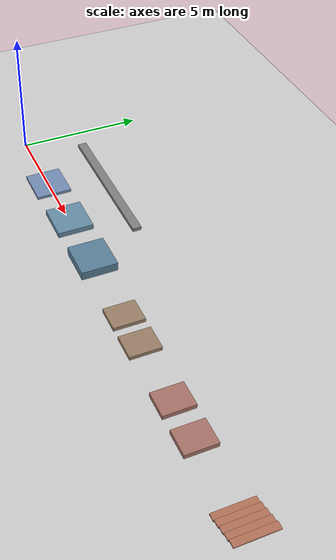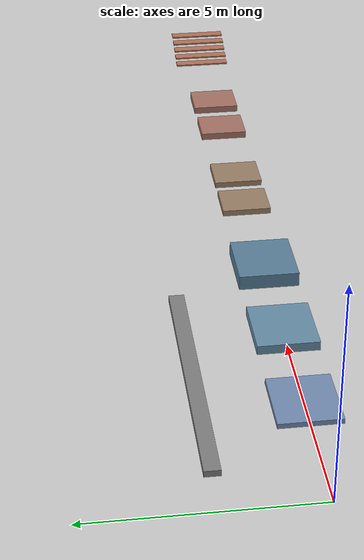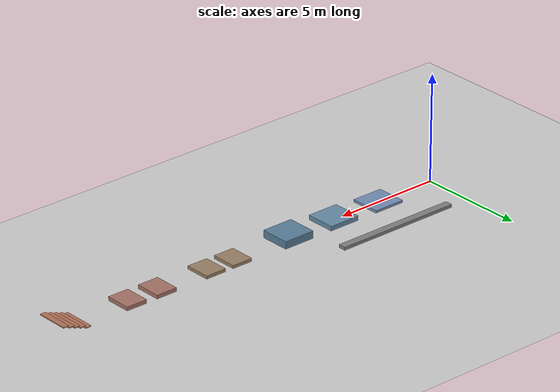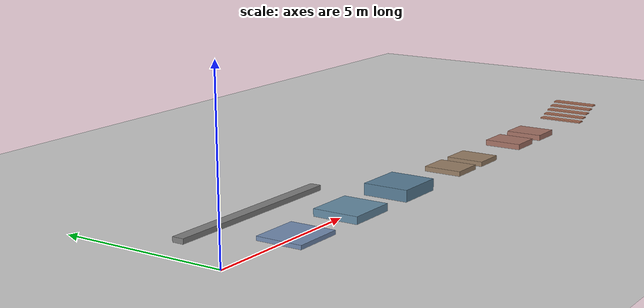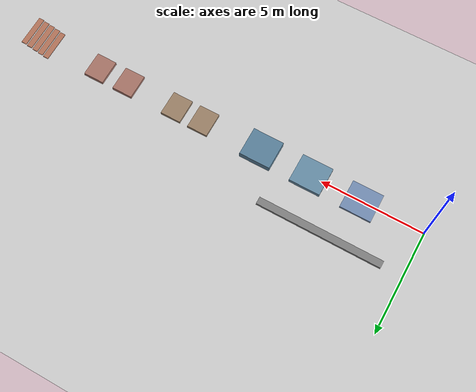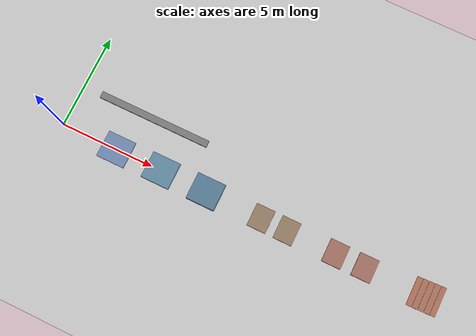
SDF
<?xml version="1.0" ?>
<sdf version="1.8">
  <world name="go2_rl">

    <physics name="1ms" type="ode">
      <max_step_size>0.005</max_step_size>
      <real_time_factor>1.0</real_time_factor>
    </physics>

    <plugin filename="gz-sim-physics-system" name="gz::sim::systems::Physics"/>
    <plugin filename="gz-sim-user-commands-system" name="gz::sim::systems::UserCommands"/>
    <plugin filename="gz-sim-scene-broadcaster-system" name="gz::sim::systems::SceneBroadcaster"/>
    <plugin filename="gz-sim-contact-system" name="gz::sim::systems::Contact"/>
    <plugin filename="gz-sim-imu-system" name="gz::sim::systems::Imu"/>
    <plugin filename="gz-sim-sensors-system" name="gz::sim::systems::Sensors">
      <render_engine>ogre2</render_engine>
    </plugin>

    <light type="directional" name="sun">
      <cast_shadows>true</cast_shadows>
      <pose>0 0 10 0 0 0</pose>
      <diffuse>0.8 0.8 0.8 1</diffuse>
      <specular>0.2 0.2 0.2 1</specular>
      <direction>-0.5 0.1 -0.9</direction>
    </light>

    <!-- Flat spawn / fall-recovery pad at origin -->
    <model name="ground_plane">
      <static>true</static>
      <link name="link">
        <collision name="collision">
          <geometry><plane><normal>0 0 1</normal><size>200 200</size></plane></geometry>
          <surface><friction><ode><mu>1.0</mu><mu2>1.0</mu2></ode></friction></surface>
        </collision>
        <visual name="visual">
          <geometry><plane><normal>0 0 1</normal><size>200 200</size></plane></geometry>
          <material><ambient>0.8 0.8 0.8 1</ambient><diffuse>0.8 0.8 0.8 1</diffuse></material>
        </visual>
      </link>
    </model>

    <!-- Raised ledges / platforms (parkour-style climbs) -->
    <model name="ledge_low">
      <static>true</static>
      <pose>0 0 0 0 0 0</pose>
      <link name="deck">
        <pose>3.0000 0.0000 0.0600 0 0 0</pose>
        <collision name="collision">
          <geometry><box><size>1.5000 1.4000 0.1200</size></box></geometry>
          <surface><friction><ode><mu>1.0</mu><mu2>1.0</mu2></ode></friction></surface>
        </collision>
        <visual name="visual">
          <geometry><box><size>1.5000 1.4000 0.1200</size></box></geometry>
          <material><ambient>0.45 0.55 0.7 1</ambient><diffuse>0.45 0.55 0.7 1</diffuse></material>
        </visual>
      </link>
    </model>
    <model name="ledge_mid">
      <static>true</static>
      <pose>0 0 0 0 0 0</pose>
      <link name="deck">
        <pose>5.5000 0.0000 0.1100 0 0 0</pose>
        <collision name="collision">
          <geometry><box><size>1.5000 1.4000 0.2200</size></box></geometry>
          <surface><friction><ode><mu>1.0</mu><mu2>1.0</mu2></ode></friction></surface>
        </collision>
        <visual name="visual">
          <geometry><box><size>1.5000 1.4000 0.2200</size></box></geometry>
          <material><ambient>0.4 0.55 0.65 1</ambient><diffuse>0.4 0.55 0.65 1</diffuse></material>
        </visual>
      </link>
    </model>
    <model name="ledge_high">
      <static>true</static>
      <pose>0 0 0 0 0 0</pose>
      <link name="deck">
        <pose>8.0000 0.0000 0.1750 0 0 0</pose>
        <collision name="collision">
          <geometry><box><size>1.5000 1.4000 0.3500</size></box></geometry>
          <surface><friction><ode><mu>1.0</mu><mu2>1.0</mu2></ode></friction></surface>
        </collision>
        <visual name="visual">
          <geometry><box><size>1.5000 1.4000 0.3500</size></box></geometry>
          <material><ambient>0.35 0.5 0.6 1</ambient><diffuse>0.35 0.5 0.6 1</diffuse></material>
        </visual>
      </link>
    </model>

    <!-- Gap crossings: two platforms with open air between -->
    <model name="gap_a">
      <static>true</static>
      <pose>0 0 0 0 0 0</pose>
      <link name="deck">
        <pose>11.0000 0.0000 0.0750 0 0 0</pose>
        <collision name="collision">
          <geometry><box><size>1.0000 1.2000 0.1500</size></box></geometry>
          <surface><friction><ode><mu>1.0</mu><mu2>1.0</mu2></ode></friction></surface>
        </collision>
        <visual name="visual">
          <geometry><box><size>1.0000 1.2000 0.1500</size></box></geometry>
          <material><ambient>0.6 0.5 0.4 1</ambient><diffuse>0.6 0.5 0.4 1</diffuse></material>
        </visual>
      </link>
    </model>
    <model name="gap_b">
      <static>true</static>
      <pose>0 0 0 0 0 0</pose>
      <link name="deck">
        <pose>12.4000 0.0000 0.0750 0 0 0</pose>
        <collision name="collision">
          <geometry><box><size>1.0000 1.2000 0.1500</size></box></geometry>
          <surface><friction><ode><mu>1.0</mu><mu2>1.0</mu2></ode></friction></surface>
        </collision>
        <visual name="visual">
          <geometry><box><size>1.0000 1.2000 0.1500</size></box></geometry>
          <material><ambient>0.6 0.5 0.4 1</ambient><diffuse>0.6 0.5 0.4 1</diffuse></material>
        </visual>
      </link>
    </model>

    <!-- Wider gap (~0.55 m clear) -->
    <model name="gap2_a">
      <static>true</static>
      <pose>0 0 0 0 0 0</pose>
      <link name="deck">
        <pose>15.0000 0.0000 0.0900 0 0 0</pose>
        <collision name="collision">
          <geometry><box><size>1.0000 1.2000 0.1800</size></box></geometry>
          <surface><friction><ode><mu>1.0</mu><mu2>1.0</mu2></ode></friction></surface>
        </collision>
        <visual name="visual">
          <geometry><box><size>1.0000 1.2000 0.1800</size></box></geometry>
          <material><ambient>0.65 0.45 0.4 1</ambient><diffuse>0.65 0.45 0.4 1</diffuse></material>
        </visual>
      </link>
    </model>
    <model name="gap2_b">
      <static>true</static>
      <pose>0 0 0 0 0 0</pose>
      <link name="deck">
        <pose>16.5500 0.0000 0.0900 0 0 0</pose>
        <collision name="collision">
          <geometry><box><size>1.0000 1.2000 0.1800</size></box></geometry>
          <surface><friction><ode><mu>1.0</mu><mu2>1.0</mu2></ode></friction></surface>
        </collision>
        <visual name="visual">
          <geometry><box><size>1.0000 1.2000 0.1800</size></box></geometry>
          <material><ambient>0.65 0.45 0.4 1</ambient><diffuse>0.65 0.45 0.4 1</diffuse></material>
        </visual>
      </link>
    </model>

    <!-- Hollow stairs (open risers) — harder footholds -->
    <model name="hollow_stairs">
      <static>true</static>
      <pose>0 0 0 0 0 0</pose>
      <link name="tread_1">
        <pose>19.1400 0.0000 0.0775 0 0 0</pose>
        <collision name="collision">
          <geometry><box><size>0.2660 1.5000 0.0450</size></box></geometry>
          <surface><friction><ode><mu>1.0</mu><mu2>1.0</mu2></ode></friction></surface>
        </collision>
        <visual name="visual">
          <geometry><box><size>0.2660 1.5000 0.0450</size></box></geometry>
          <material><ambient>0.7 0.45 0.35 1</ambient><diffuse>0.7 0.45 0.35 1</diffuse></material>
        </visual>
      </link>
      <link name="tread_2">
        <pose>19.4200 0.0000 0.1775 0 0 0</pose>
        <collision name="collision">
          <geometry><box><size>0.2660 1.5000 0.0450</size></box></geometry>
          <surface><friction><ode><mu>1.0</mu><mu2>1.0</mu2></ode></friction></surface>
        </collision>
        <visual name="visual">
          <geometry><box><size>0.2660 1.5000 0.0450</size></box></geometry>
          <material><ambient>0.7 0.45 0.35 1</ambient><diffuse>0.7 0.45 0.35 1</diffuse></material>
        </visual>
      </link>
      <link name="tread_3">
        <pose>19.7000 0.0000 0.2775 0 0 0</pose>
        <collision name="collision">
          <geometry><box><size>0.2660 1.5000 0.0450</size></box></geometry>
          <surface><friction><ode><mu>1.0</mu><mu2>1.0</mu2></ode></friction></surface>
        </collision>
        <visual name="visual">
          <geometry><box><size>0.2660 1.5000 0.0450</size></box></geometry>
          <material><ambient>0.7 0.45 0.35 1</ambient><diffuse>0.7 0.45 0.35 1</diffuse></material>
        </visual>
      </link>
      <link name="tread_4">
        <pose>19.9800 0.0000 0.3775 0 0 0</pose>
        <collision name="collision">
          <geometry><box><size>0.2660 1.5000 0.0450</size></box></geometry>
          <surface><friction><ode><mu>1.0</mu><mu2>1.0</mu2></ode></friction></surface>
        </collision>
        <visual name="visual">
          <geometry><box><size>0.2660 1.5000 0.0450</size></box></geometry>
          <material><ambient>0.7 0.45 0.35 1</ambient><diffuse>0.7 0.45 0.35 1</diffuse></material>
        </visual>
      </link>
      <link name="tread_5">
        <pose>20.2600 0.0000 0.4775 0 0 0</pose>
        <collision name="collision">
          <geometry><box><size>0.2660 1.5000 0.0450</size></box></geometry>
          <surface><friction><ode><mu>1.0</mu><mu2>1.0</mu2></ode></friction></surface>
        </collision>
        <visual name="visual">
          <geometry><box><size>0.2660 1.5000 0.0450</size></box></geometry>
          <material><ambient>0.7 0.45 0.35 1</ambient><diffuse>0.7 0.45 0.35 1</diffuse></material>
        </visual>
      </link>
    </model>

    <!-- Side curb / sidewalk ledge -->
    <model name="curb">
      <static>true</static>
      <pose>0 0 0 0 0 0</pose>
      <link name="deck">
        <pose>4.0000 2.2000 0.0750 0 0 0</pose>
        <collision name="collision">
          <geometry><box><size>6.0000 0.3500 0.1500</size></box></geometry>
          <surface><friction><ode><mu>1.0</mu><mu2>1.0</mu2></ode></friction></surface>
        </collision>
        <visual name="visual">
          <geometry><box><size>6.0000 0.3500 0.1500</size></box></geometry>
          <material><ambient>0.5 0.5 0.5 1</ambient><diffuse>0.5 0.5 0.5 1</diffuse></material>
        </visual>
      </link>
    </model>

  </world>
</sdf>
